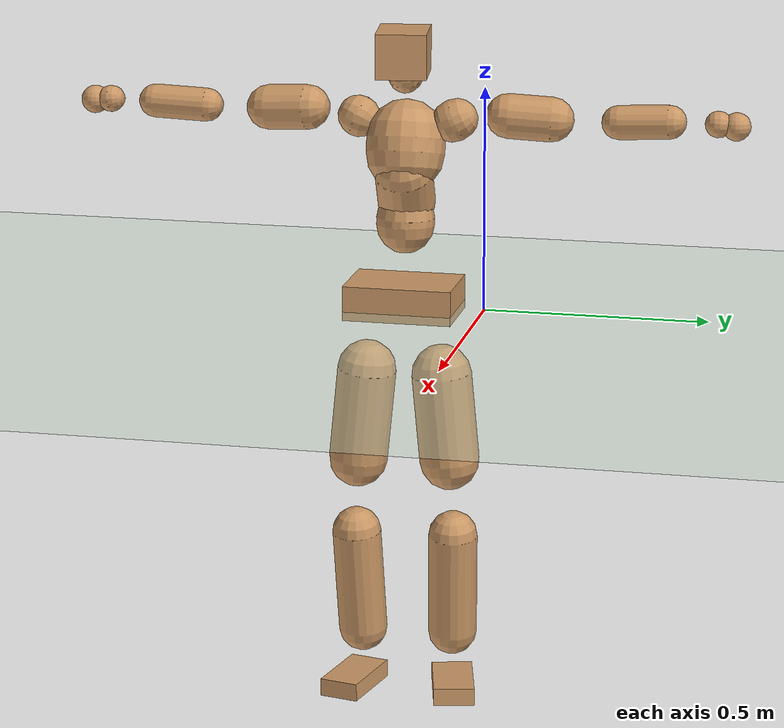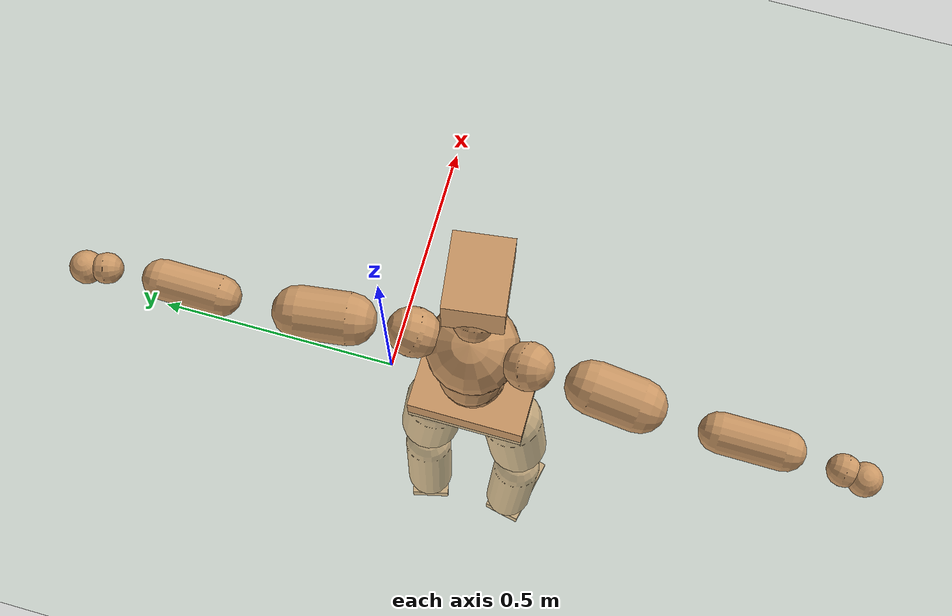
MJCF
<mujoco model="humanoid">
  <compiler coordinate="local" angle="radian"/>
  <default>
    <joint damping="0.0" armature="0.01" stiffness="0.0" limited="true"/>
    <geom conaffinity="1" condim="3" contype="7" margin="0.001" rgba="0.8 0.6 .4 1"/>
  </default>
  <asset>
    <texture type="skybox" builtin="gradient" rgb1=".4 .5 .6" rgb2="0 0 0" width="100" height="100"/>
    <texture builtin="flat" height="1278" mark="cross" markrgb="1 1 1" name="texgeom" random="0.01" rgb1="0.8 0.6 0.4" rgb2="0.8 0.6 0.4" type="cube" width="127"/>
    <texture builtin="checker" height="100" name="texplane" rgb1="0 0 0" rgb2="0.8 0.8 0.8" type="2d" width="100"/>
    <material name="MatPlane" reflectance="0.5" shininess="1" specular="1" texrepeat="60 60" texture="texplane"/>
    <material name="geom" texture="texgeom" texuniform="true"/>
  </asset>
  <worldbody>
    <light cutoff="100" diffuse="1 1 1" dir="-0 0 -1.3" directional="true" exponent="1" pos="0 0 1.3" specular=".1 .1 .1"/>
    <geom conaffinity="1" condim="3" name="floor" pos="0 0 0" rgba="0.8 0.9 0.8 1" size="100 100 .2" type="plane" material="MatPlane"/>
    <body name="Pelvis" pos="0.0009 -0.1827 0.0296">
      <freejoint name="Pelvis"/>
      <geom type="box" contype="1" conaffinity="1" density="5359.374413" pos="-0.0057 0.0000 -0.0125" size="0.0827 0.122 0.0387" quat="1.0000 0.0000 0.0000 -0.0015" name="Pelvis"/>
      <body name="L_Hip" pos="-0.0066 0.077 -0.0888">
        <joint name="L_Hip_x" type="hinge" pos="0 0 0" axis="1 0 0" stiffness="1600" damping="160" armature="0.02" range="-180.0000 180.0000"/>
        <joint name="L_Hip_y" type="hinge" pos="0 0 0" axis="0 1 0" stiffness="1600" damping="160" armature="0.02" range="-180.0000 180.0000"/>
        <joint name="L_Hip_z" type="hinge" pos="0 0 0" axis="0 0 1" stiffness="1600" damping="160" armature="0.02" range="-180.0000 180.0000"/>
        <geom type="capsule" contype="1" conaffinity="1" density="2040.816327" size="0.0674" fromto="-0.0009 0.0088 -0.0969 -0.0029 0.0271 -0.2987" name="L_Hip"/>
        <body name="L_Knee" pos="-0.0038 0.0359 -0.3957">
          <joint name="L_Knee_x" type="hinge" pos="0 0 0" axis="1 0 0" stiffness="1600" damping="160" armature="0.02" range="-180.0000 180.0000"/>
          <joint name="L_Knee_y" type="hinge" pos="0 0 0" axis="0 1 0" stiffness="1600" damping="160" armature="0.02" range="-180.0000 180.0000"/>
          <joint name="L_Knee_z" type="hinge" pos="0 0 0" axis="0 0 1" stiffness="1600" damping="160" armature="0.02" range="-180.0000 180.0000"/>
          <geom type="capsule" contype="1" conaffinity="1" density="1234.567901" size="0.0557" fromto="-0.0099 -0.0022 -0.0851 -0.0379 -0.0083 -0.3270" name="L_Knee"/>
          <body name="L_Ankle" pos="-0.0478 -0.0105 -0.4121">
            <joint name="L_Ankle_x" type="hinge" pos="0 0 0" axis="1 0 0" stiffness="1600" damping="160" armature="0.02" range="-180.0000 180.0000"/>
            <joint name="L_Ankle_y" type="hinge" pos="0 0 0" axis="0 1 0" stiffness="1600" damping="160" armature="0.02" range="-180.0000 180.0000"/>
            <joint name="L_Ankle_z" type="hinge" pos="0 0 0" axis="0 0 1" stiffness="1600" damping="160" armature="0.02" range="-180.0000 180.0000"/>
            <geom type="box" contype="1" conaffinity="1" density="1000.000022" pos="0.0581 0.0135 -0.0285" size="0.0838 0.0464 0.0199" quat="0.9935 0.0000 0.0000 0.1135" name="L_Ankle"/>
            <body name="L_Toe" pos="0.1162 0.0269 -0.0571">
              <joint name="L_Toe_x" type="hinge" pos="0 0 0" axis="1 0 0" stiffness="1000" damping="100" armature="0.02" range="-180.0000 180.0000"/>
              <joint name="L_Toe_y" type="hinge" pos="0 0 0" axis="0 1 0" stiffness="1000" damping="100" armature="0.02" range="-180.0000 180.0000"/>
              <joint name="L_Toe_z" type="hinge" pos="0 0 0" axis="0 0 1" stiffness="1000" damping="100" armature="0.02" range="-180.0000 180.0000"/>
              <geom type="box" contype="1" conaffinity="1" density="8738920.362637" pos="0.0000 0.0000 0.0291" size="0.0009 0.0023 0.001" quat="0.9928 0.0000 0.0000 0.1196" name="L_Toe"/>
            </body>
          </body>
        </body>
      </body>
      <body name="R_Hip" pos="-0.0037 -0.0753 -0.0874">
        <joint name="R_Hip_x" type="hinge" pos="0 0 0" axis="1 0 0" stiffness="1600" damping="160" armature="0.02" range="-180.0000 180.0000"/>
        <joint name="R_Hip_y" type="hinge" pos="0 0 0" axis="0 1 0" stiffness="1600" damping="160" armature="0.02" range="-180.0000 180.0000"/>
        <joint name="R_Hip_z" type="hinge" pos="0 0 0" axis="0 0 1" stiffness="1600" damping="160" armature="0.02" range="-180.0000 180.0000"/>
        <geom type="capsule" contype="1" conaffinity="1" density="2040.816327" size="0.0666" fromto="-0.0015 -0.0099 -0.0960 -0.0049 -0.0315 -0.3067" name="R_Hip"/>
        <body name="R_Knee" pos="-0.0064 -0.0413 -0.4028">
          <joint name="R_Knee_x" type="hinge" pos="0 0 0" axis="1 0 0" stiffness="1600" damping="160" armature="0.02" range="-180.0000 180.0000"/>
          <joint name="R_Knee_y" type="hinge" pos="0 0 0" axis="0 1 0" stiffness="1600" damping="160" armature="0.02" range="-180.0000 180.0000"/>
          <joint name="R_Knee_z" type="hinge" pos="0 0 0" axis="0 0 1" stiffness="1600" damping="160" armature="0.02" range="-180.0000 180.0000"/>
          <geom type="capsule" contype="1" conaffinity="1" density="1234.567901" size="0.0559" fromto="-0.0096 0.0027 -0.0853 -0.0368 0.0105 -0.3282" name="R_Knee"/>
          <body name="R_Ankle" pos="-0.0463 0.0132 -0.4135">
            <joint name="R_Ankle_x" type="hinge" pos="0 0 0" axis="1 0 0" stiffness="1600" damping="160" armature="0.02" range="-180.0000 180.0000"/>
            <joint name="R_Ankle_y" type="hinge" pos="0 0 0" axis="0 1 0" stiffness="1600" damping="160" armature="0.02" range="-180.0000 180.0000"/>
            <joint name="R_Ankle_z" type="hinge" pos="0 0 0" axis="0 0 1" stiffness="1600" damping="160" armature="0.02" range="-180.0000 180.0000"/>
            <geom type="box" contype="1" conaffinity="1" density="999.999969" pos="0.0596 -0.0130 -0.0249" size="0.0844 0.0451 0.0203" quat="0.9942 0.0000 0.0000 -0.1073" name="R_Ankle"/>
            <body name="R_Toe" pos="0.1193 -0.0261 -0.0497">
              <joint name="R_Toe_x" type="hinge" pos="0 0 0" axis="1 0 0" stiffness="1000" damping="100" armature="0.02" range="-180.0000 180.0000"/>
              <joint name="R_Toe_y" type="hinge" pos="0 0 0" axis="0 1 0" stiffness="1000" damping="100" armature="0.02" range="-180.0000 180.0000"/>
              <joint name="R_Toe_z" type="hinge" pos="0 0 0" axis="0 0 1" stiffness="1000" damping="100" armature="0.02" range="-180.0000 180.0000"/>
              <geom type="box" contype="1" conaffinity="1" density="8698415.550639" pos="0.0000 0.0000 0.0261" size="0.0008 0.0022 0.0011" quat="0.9952 0.0000 0.0000 -0.0977" name="R_Toe"/>
            </body>
          </body>
        </body>
      </body>
      <body name="Torso" pos="-0.0238 -0.0016 0.1011">
        <joint name="Torso_x" type="hinge" pos="0 0 0" axis="1 0 0" stiffness="2000" damping="200" armature="0.02" range="-180.0000 180.0000"/>
        <joint name="Torso_y" type="hinge" pos="0 0 0" axis="0 1 0" stiffness="2000" damping="200" armature="0.02" range="-180.0000 180.0000"/>
        <joint name="Torso_z" type="hinge" pos="0 0 0" axis="0 0 1" stiffness="2000" damping="200" armature="0.02" range="-180.0000 180.0000"/>
        <geom type="capsule" contype="1" conaffinity="1" density="2040.816327" size="0.0649" fromto="-0.0029 0.0010 0.0648 -0.0022 0.0008 0.0493" name="Torso"/>
        <body name="Spine" pos="-0.0052 0.0018 0.1142">
          <joint name="Spine_x" type="hinge" pos="0 0 0" axis="1 0 0" stiffness="2000" damping="200" armature="0.02" range="-180.0000 180.0000"/>
          <joint name="Spine_y" type="hinge" pos="0 0 0" axis="0 1 0" stiffness="2000" damping="200" armature="0.02" range="-180.0000 180.0000"/>
          <joint name="Spine_z" type="hinge" pos="0 0 0" axis="0 0 1" stiffness="2000" damping="200" armature="0.02" range="-180.0000 180.0000"/>
          <geom type="capsule" contype="1" conaffinity="1" density="2040.816327" size="0.0646" fromto="0.0310 0.0013 0.0567 -0.0070 -0.0003 -0.0127" name="Spine"/>
          <body name="Chest" pos="0.0241 0.001 0.044">
            <joint name="Chest_x" type="hinge" pos="0 0 0" axis="1 0 0" stiffness="2000" damping="200" armature="0.02" range="-180.0000 180.0000"/>
            <joint name="Chest_y" type="hinge" pos="0 0 0" axis="0 1 0" stiffness="2000" damping="200" armature="0.02" range="-180.0000 180.0000"/>
            <joint name="Chest_z" type="hinge" pos="0 0 0" axis="0 0 1" stiffness="2000" damping="200" armature="0.02" range="-180.0000 180.0000"/>
            <geom type="capsule" contype="1" conaffinity="1" density="2040.816327" size="0.0879" fromto="-0.0222 -0.0010 0.0850 -0.0141 -0.0007 0.0538" name="Chest"/>
            <body name="Neck" pos="-0.04 -0.0028 0.1965">
              <joint name="Neck_x" type="hinge" pos="0 0 0" axis="1 0 0" stiffness="1000" damping="100" armature="0.02" range="-180.0000 180.0000"/>
              <joint name="Neck_y" type="hinge" pos="0 0 0" axis="0 1 0" stiffness="1000" damping="100" armature="0.02" range="-180.0000 180.0000"/>
              <joint name="Neck_z" type="hinge" pos="0 0 0" axis="0 0 1" stiffness="1000" damping="100" armature="0.02" range="-180.0000 180.0000"/>
              <geom type="capsule" contype="1" conaffinity="1" density="1000" size="0.0382" fromto="0.0235 0.0022 0.0291 0.0248 0.0023 0.0307" name="Neck"/>
              <body name="Head" pos="0.0483 0.0045 0.0598">
                <joint name="Head_x" type="hinge" pos="0 0 0" axis="1 0 0" stiffness="1000" damping="100" armature="0.02" range="-180.0000 180.0000"/>
                <joint name="Head_y" type="hinge" pos="0 0 0" axis="0 1 0" stiffness="1000" damping="100" armature="0.02" range="-180.0000 180.0000"/>
                <joint name="Head_z" type="hinge" pos="0 0 0" axis="0 0 1" stiffness="1000" damping="100" armature="0.02" range="-180.0000 180.0000"/>
                <geom type="box" contype="1" conaffinity="1" density="2249.999811" pos="0.0251 0.0033 0.0309" size="0.071 0.0555 0.0494" quat="0.9979 0.0000 0.0000 0.0644" name="Head"/>
              </body>
            </body>
            <body name="L_Thorax" pos="-0.0318 0.0684 0.1103">
              <joint name="L_Thorax_x" type="hinge" pos="0 0 0" axis="1 0 0" stiffness="1000" damping="100" armature="0.02" range="-180.0000 180.0000"/>
              <joint name="L_Thorax_y" type="hinge" pos="0 0 0" axis="0 1 0" stiffness="1000" damping="100" armature="0.02" range="-180.0000 180.0000"/>
              <joint name="L_Thorax_z" type="hinge" pos="0 0 0" axis="0 0 1" stiffness="1000" damping="100" armature="0.02" range="-180.0000 180.0000"/>
              <geom type="capsule" contype="1" conaffinity="1" density="1000" size="0.0468" fromto="-0.0032 0.0424 0.0194 -0.0025 0.0336 0.0154" name="L_Thorax"/>
              <body name="L_Shoulder" pos="-0.0057 0.076 0.0348">
                <joint name="L_Shoulder_x" type="hinge" pos="0 0 0" axis="1 0 0" stiffness="1000" damping="100" armature="0.02" range="-720.0000 720.0000"/>
                <joint name="L_Shoulder_y" type="hinge" pos="0 0 0" axis="0 1 0" stiffness="1000" damping="100" armature="0.02" range="-720.0000 720.0000"/>
                <joint name="L_Shoulder_z" type="hinge" pos="0 0 0" axis="0 0 1" stiffness="1000" damping="100" armature="0.02" range="-720.0000 720.0000"/>
                <geom type="capsule" contype="1" conaffinity="1" density="1000" size="0.0497" fromto="-0.0086 0.0791 -0.0051 -0.0189 0.1736 -0.0112" name="L_Shoulder"/>
                <body name="L_Elbow" pos="-0.0275 0.2527 -0.0163">
                  <joint name="L_Elbow_x" type="hinge" pos="0 0 0" axis="1 0 0" stiffness="1000" damping="100" armature="0.02" range="-720.0000 720.0000"/>
                  <joint name="L_Elbow_y" type="hinge" pos="0 0 0" axis="0 1 0" stiffness="1000" damping="100" armature="0.02" range="-720.0000 720.0000"/>
                  <joint name="L_Elbow_z" type="hinge" pos="0 0 0" axis="0 0 1" stiffness="1000" damping="100" armature="0.02" range="-720.0000 720.0000"/>
                  <geom type="capsule" contype="1" conaffinity="1" density="1000" size="0.0379" fromto="-0.0001 0.0678 0.0032 -0.0002 0.1787 0.0083" name="L_Elbow"/>
                  <body name="L_Wrist" pos="-0.0002 0.2465 0.0115">
                    <joint name="L_Wrist_x" type="hinge" pos="0 0 0" axis="1 0 0" stiffness="600" damping="60" armature="0.02" range="-180.0000 180.0000"/>
                    <joint name="L_Wrist_y" type="hinge" pos="0 0 0" axis="0 1 0" stiffness="600" damping="60" armature="0.02" range="-180.0000 180.0000"/>
                    <joint name="L_Wrist_z" type="hinge" pos="0 0 0" axis="0 0 1" stiffness="600" damping="60" armature="0.02" range="-180.0000 180.0000"/>
                    <geom type="capsule" contype="1" conaffinity="1" density="1000" size="0.0291" fromto="-0.0064 0.0378 -0.0048 -0.0068 0.0397 -0.0050" name="L_Wrist"/>
                    <body name="L_Hand" pos="-0.0132 0.0775 -0.0098">
                      <joint name="L_Hand_x" type="hinge" pos="0 0 0" axis="1 0 0" stiffness="600" damping="60" armature="0.02" range="-180.0000 180.0000"/>
                      <joint name="L_Hand_y" type="hinge" pos="0 0 0" axis="0 1 0" stiffness="600" damping="60" armature="0.02" range="-180.0000 180.0000"/>
                      <joint name="L_Hand_z" type="hinge" pos="0 0 0" axis="0 0 1" stiffness="600" damping="60" armature="0.02" range="-180.0000 180.0000"/>
                      <geom type="sphere" contype="1" conaffinity="1" density="1000" size="0.0312" pos="0.0000 0.0000 0.0000" name="L_Hand"/>
                    </body>
                  </body>
                </body>
              </body>
            </body>
            <body name="R_Thorax" pos="-0.0373 -0.0707 0.1095">
              <joint name="R_Thorax_x" type="hinge" pos="0 0 0" axis="1 0 0" stiffness="1000" damping="100" armature="0.02" range="-180.0000 180.0000"/>
              <joint name="R_Thorax_y" type="hinge" pos="0 0 0" axis="0 1 0" stiffness="1000" damping="100" armature="0.02" range="-180.0000 180.0000"/>
              <joint name="R_Thorax_z" type="hinge" pos="0 0 0" axis="0 0 1" stiffness="1000" damping="100" armature="0.02" range="-180.0000 180.0000"/>
              <geom type="capsule" contype="1" conaffinity="1" density="1000" size="0.0458" fromto="-0.0037 -0.0418 0.0185 -0.0034 -0.0385 0.0170" name="R_Thorax"/>
              <body name="R_Shoulder" pos="-0.0071 -0.0803 0.0355">
                <joint name="R_Shoulder_x" type="hinge" pos="0 0 0" axis="1 0 0" stiffness="1000" damping="100" armature="0.02" range="-720.0000 720.0000"/>
                <joint name="R_Shoulder_y" type="hinge" pos="0 0 0" axis="0 1 0" stiffness="1000" damping="100" armature="0.02" range="-720.0000 720.0000"/>
                <joint name="R_Shoulder_z" type="hinge" pos="0 0 0" axis="0 0 1" stiffness="1000" damping="100" armature="0.02" range="-720.0000 720.0000"/>
                <geom type="capsule" contype="1" conaffinity="1" density="1000" size="0.0505" fromto="-0.0074 -0.0800 -0.0048 -0.0156 -0.1694 -0.0103" name="R_Shoulder"/>
                <body name="R_Elbow" pos="-0.023 -0.2494 -0.0151">
                  <joint name="R_Elbow_x" type="hinge" pos="0 0 0" axis="1 0 0" stiffness="1000" damping="100" armature="0.02" range="-720.0000 720.0000"/>
                  <joint name="R_Elbow_y" type="hinge" pos="0 0 0" axis="0 1 0" stiffness="1000" damping="100" armature="0.02" range="-720.0000 720.0000"/>
                  <joint name="R_Elbow_z" type="hinge" pos="0 0 0" axis="0 0 1" stiffness="1000" damping="100" armature="0.02" range="-720.0000 720.0000"/>
                  <geom type="capsule" contype="1" conaffinity="1" density="1000" size="0.0377" fromto="-0.0012 -0.0677 0.0024 -0.0032 -0.1865 0.0067" name="R_Elbow"/>
                  <body name="R_Wrist" pos="-0.0043 -0.2542 0.0092">
                    <joint name="R_Wrist_x" type="hinge" pos="0 0 0" axis="1 0 0" stiffness="600" damping="60" armature="0.02" range="-180.0000 180.0000"/>
                    <joint name="R_Wrist_y" type="hinge" pos="0 0 0" axis="0 1 0" stiffness="600" damping="60" armature="0.02" range="-180.0000 180.0000"/>
                    <joint name="R_Wrist_z" type="hinge" pos="0 0 0" axis="0 0 1" stiffness="600" damping="60" armature="0.02" range="-180.0000 180.0000"/>
                    <geom type="capsule" contype="1" conaffinity="1" density="1000" size="0.0299" fromto="-0.0051 -0.0383 -0.0035 -0.0053 -0.0402 -0.0037" name="R_Wrist"/>
                    <body name="R_Hand" pos="-0.0104 -0.0785 -0.0072">
                      <joint name="R_Hand_x" type="hinge" pos="0 0 0" axis="1 0 0" stiffness="600" damping="60" armature="0.02" range="-180.0000 180.0000"/>
                      <joint name="R_Hand_y" type="hinge" pos="0 0 0" axis="0 1 0" stiffness="600" damping="60" armature="0.02" range="-180.0000 180.0000"/>
                      <joint name="R_Hand_z" type="hinge" pos="0 0 0" axis="0 0 1" stiffness="600" damping="60" armature="0.02" range="-180.0000 180.0000"/>
                      <geom type="sphere" contype="1" conaffinity="1" density="1000" size="0.0315" pos="0.0000 0.0000 0.0000" name="R_Hand"/>
                    </body>
                  </body>
                </body>
              </body>
            </body>
          </body>
        </body>
      </body>
    </body>
  </worldbody>
  <actuator>
    <motor name="L_Hip_x" joint="L_Hip_x" gear="500"/>
    <motor name="L_Hip_y" joint="L_Hip_y" gear="500"/>
    <motor name="L_Hip_z" joint="L_Hip_z" gear="500"/>
    <motor name="L_Knee_x" joint="L_Knee_x" gear="500"/>
    <motor name="L_Knee_y" joint="L_Knee_y" gear="500"/>
    <motor name="L_Knee_z" joint="L_Knee_z" gear="500"/>
    <motor name="L_Ankle_x" joint="L_Ankle_x" gear="500"/>
    <motor name="L_Ankle_y" joint="L_Ankle_y" gear="500"/>
    <motor name="L_Ankle_z" joint="L_Ankle_z" gear="500"/>
    <motor name="L_Toe_x" joint="L_Toe_x" gear="500"/>
    <motor name="L_Toe_y" joint="L_Toe_y" gear="500"/>
    <motor name="L_Toe_z" joint="L_Toe_z" gear="500"/>
    <motor name="R_Hip_x" joint="R_Hip_x" gear="500"/>
    <motor name="R_Hip_y" joint="R_Hip_y" gear="500"/>
    <motor name="R_Hip_z" joint="R_Hip_z" gear="500"/>
    <motor name="R_Knee_x" joint="R_Knee_x" gear="500"/>
    <motor name="R_Knee_y" joint="R_Knee_y" gear="500"/>
    <motor name="R_Knee_z" joint="R_Knee_z" gear="500"/>
    <motor name="R_Ankle_x" joint="R_Ankle_x" gear="500"/>
    <motor name="R_Ankle_y" joint="R_Ankle_y" gear="500"/>
    <motor name="R_Ankle_z" joint="R_Ankle_z" gear="500"/>
    <motor name="R_Toe_x" joint="R_Toe_x" gear="500"/>
    <motor name="R_Toe_y" joint="R_Toe_y" gear="500"/>
    <motor name="R_Toe_z" joint="R_Toe_z" gear="500"/>
    <motor name="Torso_x" joint="Torso_x" gear="500"/>
    <motor name="Torso_y" joint="Torso_y" gear="500"/>
    <motor name="Torso_z" joint="Torso_z" gear="500"/>
    <motor name="Spine_x" joint="Spine_x" gear="500"/>
    <motor name="Spine_y" joint="Spine_y" gear="500"/>
    <motor name="Spine_z" joint="Spine_z" gear="500"/>
    <motor name="Chest_x" joint="Chest_x" gear="500"/>
    <motor name="Chest_y" joint="Chest_y" gear="500"/>
    <motor name="Chest_z" joint="Chest_z" gear="500"/>
    <motor name="Neck_x" joint="Neck_x" gear="500"/>
    <motor name="Neck_y" joint="Neck_y" gear="500"/>
    <motor name="Neck_z" joint="Neck_z" gear="500"/>
    <motor name="Head_x" joint="Head_x" gear="500"/>
    <motor name="Head_y" joint="Head_y" gear="500"/>
    <motor name="Head_z" joint="Head_z" gear="500"/>
    <motor name="L_Thorax_x" joint="L_Thorax_x" gear="500"/>
    <motor name="L_Thorax_y" joint="L_Thorax_y" gear="500"/>
    <motor name="L_Thorax_z" joint="L_Thorax_z" gear="500"/>
    <motor name="L_Shoulder_x" joint="L_Shoulder_x" gear="500"/>
    <motor name="L_Shoulder_y" joint="L_Shoulder_y" gear="500"/>
    <motor name="L_Shoulder_z" joint="L_Shoulder_z" gear="500"/>
    <motor name="L_Elbow_x" joint="L_Elbow_x" gear="500"/>
    <motor name="L_Elbow_y" joint="L_Elbow_y" gear="500"/>
    <motor name="L_Elbow_z" joint="L_Elbow_z" gear="500"/>
    <motor name="L_Wrist_x" joint="L_Wrist_x" gear="500"/>
    <motor name="L_Wrist_y" joint="L_Wrist_y" gear="500"/>
    <motor name="L_Wrist_z" joint="L_Wrist_z" gear="500"/>
    <motor name="L_Hand_x" joint="L_Hand_x" gear="500"/>
    <motor name="L_Hand_y" joint="L_Hand_y" gear="500"/>
    <motor name="L_Hand_z" joint="L_Hand_z" gear="500"/>
    <motor name="R_Thorax_x" joint="R_Thorax_x" gear="500"/>
    <motor name="R_Thorax_y" joint="R_Thorax_y" gear="500"/>
    <motor name="R_Thorax_z" joint="R_Thorax_z" gear="500"/>
    <motor name="R_Shoulder_x" joint="R_Shoulder_x" gear="500"/>
    <motor name="R_Shoulder_y" joint="R_Shoulder_y" gear="500"/>
    <motor name="R_Shoulder_z" joint="R_Shoulder_z" gear="500"/>
    <motor name="R_Elbow_x" joint="R_Elbow_x" gear="500"/>
    <motor name="R_Elbow_y" joint="R_Elbow_y" gear="500"/>
    <motor name="R_Elbow_z" joint="R_Elbow_z" gear="500"/>
    <motor name="R_Wrist_x" joint="R_Wrist_x" gear="500"/>
    <motor name="R_Wrist_y" joint="R_Wrist_y" gear="500"/>
    <motor name="R_Wrist_z" joint="R_Wrist_z" gear="500"/>
    <motor name="R_Hand_x" joint="R_Hand_x" gear="500"/>
    <motor name="R_Hand_y" joint="R_Hand_y" gear="500"/>
    <motor name="R_Hand_z" joint="R_Hand_z" gear="500"/>
  </actuator>
  <contact>
    <exclude body1="Torso" body2="Chest"/>
    <exclude body1="Head" body2="Chest"/>
    <exclude body1="R_Knee" body2="R_Toe"/>
    <exclude body1="R_Knee" body2="L_Ankle"/>
    <exclude body1="R_Knee" body2="L_Toe"/>
    <exclude body1="L_Knee" body2="L_Toe"/>
    <exclude body1="L_Knee" body2="R_Ankle"/>
    <exclude body1="L_Knee" body2="R_Toe"/>
    <exclude body1="L_Shoulder" body2="Chest"/>
    <exclude body1="R_Shoulder" body2="Chest"/>
  </contact>
  <sensor/>
  <size njmax="700" nconmax="700"/>
</mujoco>
